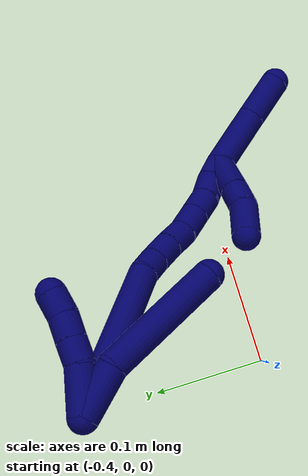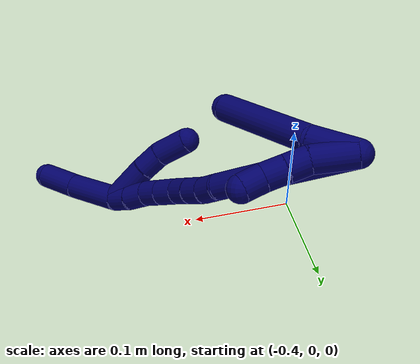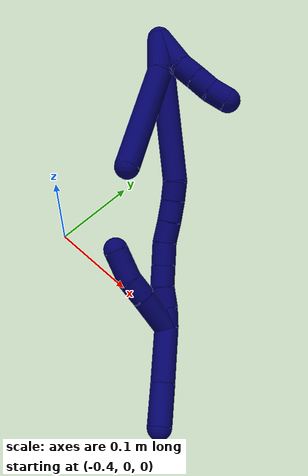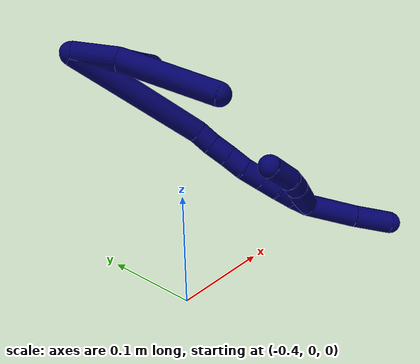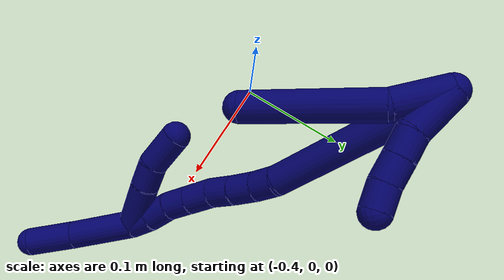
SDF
<sdf version="1.7">
 <world name="default">
  <model name="7">
   <static>0</static>
   <link name="7">
    <collision name="collision-cylinder-e_1_2_8">
     <pose>-0.005512 -0.003362 -0.020942 2.98242 -0.254233 -2.02576</pose>
     <geometry><cylinder><radius>0.0125</radius><length>0.043829</length></cylinder></geometry>
     <surface>
      <friction><ode><mu>1.16</mu><mu2>1.16</mu2><slip1>0</slip1><slip2>0</slip2></ode></friction>
      <contact><ode><kp>1e+06</kp><kd>1</kd><max_vel>0</max_vel><min_depth>0.001</min_depth></ode></contact>
     </surface>
    </collision>
    <visual name="visual-cylinder-e_1_2_8">
     <pose>-0.005512 -0.003362 -0.020942 2.98242 -0.254233 -2.02576</pose>
     <geometry><cylinder><radius>0.0125</radius><length>0.043829</length></cylinder></geometry>
     <material><ambient>0.003922 0 0.403922 1</ambient></material>
    </visual>
    <collision name="collision-cylinder-e_2_8_6">
     <pose>-0.020252 0.002586 -0.093325 -2.96256 -0.174743 1.5464</pose>
     <geometry><cylinder><radius>0.0125</radius><length>0.106171</length></cylinder></geometry>
     <surface>
      <friction><ode><mu>1.16</mu><mu2>1.16</mu2><slip1>0</slip1><slip2>0</slip2></ode></friction>
      <contact><ode><kp>1e+06</kp><kd>1</kd><max_vel>0</max_vel><min_depth>0.001</min_depth></ode></contact>
     </surface>
    </collision>
    <visual name="visual-cylinder-e_2_8_6">
     <pose>-0.020252 0.002586 -0.093325 -2.96256 -0.174743 1.5464</pose>
     <geometry><cylinder><radius>0.0125</radius><length>0.106171</length></cylinder></geometry>
     <material><ambient>0.003922 0 0.403922 1</ambient></material>
    </visual>
    <collision name="collision-cylinder-e_1_2_9">
     <pose>0.000297 -0.012421 -0.015476 2.46526 0.014967 0.042554</pose>
     <geometry><cylinder><radius>0.0125</radius><length>0.039693</length></cylinder></geometry>
     <surface>
      <friction><ode><mu>1.16</mu><mu2>1.16</mu2><slip1>0</slip1><slip2>0</slip2></ode></friction>
      <contact><ode><kp>1e+06</kp><kd>1</kd><max_vel>0</max_vel><min_depth>0.001</min_depth></ode></contact>
     </surface>
    </collision>
    <visual name="visual-cylinder-e_1_2_9">
     <pose>0.000297 -0.012421 -0.015476 2.46526 0.014967 0.042554</pose>
     <geometry><cylinder><radius>0.0125</radius><length>0.039693</length></cylinder></geometry>
     <material><ambient>0.003922 0 0.403922 1</ambient></material>
    </visual>
    <collision name="collision-cylinder-e_2_9_10">
     <pose>0.002792 -0.032482 -0.037087 2.24742 0.220705 0.45422</pose>
     <geometry><cylinder><radius>0.0125</radius><length>0.020083</length></cylinder></geometry>
     <surface>
      <friction><ode><mu>1.16</mu><mu2>1.16</mu2><slip1>0</slip1><slip2>0</slip2></ode></friction>
      <contact><ode><kp>1e+06</kp><kd>1</kd><max_vel>0</max_vel><min_depth>0.001</min_depth></ode></contact>
     </surface>
    </collision>
    <visual name="visual-cylinder-e_2_9_10">
     <pose>0.002792 -0.032482 -0.037087 2.24742 0.220705 0.45422</pose>
     <geometry><cylinder><radius>0.0125</radius><length>0.020083</length></cylinder></geometry>
     <material><ambient>0.003922 0 0.403922 1</ambient></material>
    </visual>
    <collision name="collision-cylinder-e_3_10_11">
     <pose>0.007184 -0.047584 -0.049578 2.27625 0.220163 0.469788</pose>
     <geometry><cylinder><radius>0.0125</radius><length>0.02009</length></cylinder></geometry>
     <surface>
      <friction><ode><mu>1.16</mu><mu2>1.16</mu2><slip1>0</slip1><slip2>0</slip2></ode></friction>
      <contact><ode><kp>1e+06</kp><kd>1</kd><max_vel>0</max_vel><min_depth>0.001</min_depth></ode></contact>
     </surface>
    </collision>
    <visual name="visual-cylinder-e_3_10_11">
     <pose>0.007184 -0.047584 -0.049578 2.27625 0.220163 0.469788</pose>
     <geometry><cylinder><radius>0.0125</radius><length>0.02009</length></cylinder></geometry>
     <material><ambient>0.003922 0 0.403922 1</ambient></material>
    </visual>
    <collision name="collision-cylinder-e_4_11_5">
     <pose>0.011909 -0.06347 -0.060831 2.09744 0.254103 0.436974</pose>
     <geometry><cylinder><radius>0.0125</radius><length>0.020135</length></cylinder></geometry>
     <surface>
      <friction><ode><mu>1.16</mu><mu2>1.16</mu2><slip1>0</slip1><slip2>0</slip2></ode></friction>
      <contact><ode><kp>1e+06</kp><kd>1</kd><max_vel>0</max_vel><min_depth>0.001</min_depth></ode></contact>
     </surface>
    </collision>
    <visual name="visual-cylinder-e_4_11_5">
     <pose>0.011909 -0.06347 -0.060831 2.09744 0.254103 0.436974</pose>
     <geometry><cylinder><radius>0.0125</radius><length>0.020135</length></cylinder></geometry>
     <material><ambient>0.003922 0 0.403922 1</ambient></material>
    </visual>
    <collision name="collision-cylinder-e_1_2_12">
     <pose>0.018458 -0.007539 -0.070652 3.03528 0.254157 2.35243</pose>
     <geometry><cylinder><radius>0.0125</radius><length>0.146822</length></cylinder></geometry>
     <surface>
      <friction><ode><mu>1.16</mu><mu2>1.16</mu2><slip1>0</slip1><slip2>0</slip2></ode></friction>
      <contact><ode><kp>1e+06</kp><kd>1</kd><max_vel>0</max_vel><min_depth>0.001</min_depth></ode></contact>
     </surface>
    </collision>
    <visual name="visual-cylinder-e_1_2_12">
     <pose>0.018458 -0.007539 -0.070652 3.03528 0.254157 2.35243</pose>
     <geometry><cylinder><radius>0.0125</radius><length>0.146822</length></cylinder></geometry>
     <material><ambient>0.003922 0 0.403922 1</ambient></material>
    </visual>
    <collision name="collision-cylinder-e_2_12_13">
     <pose>0.039854 -0.013623 -0.150889 -2.9909 0.294255 -2.19937</pose>
     <geometry><cylinder><radius>0.0125</radius><length>0.020263</length></cylinder></geometry>
     <surface>
      <friction><ode><mu>1.16</mu><mu2>1.16</mu2><slip1>0</slip1><slip2>0</slip2></ode></friction>
      <contact><ode><kp>1e+06</kp><kd>1</kd><max_vel>0</max_vel><min_depth>0.001</min_depth></ode></contact>
     </surface>
    </collision>
    <visual name="visual-cylinder-e_2_12_13">
     <pose>0.039854 -0.013623 -0.150889 -2.9909 0.294255 -2.19937</pose>
     <geometry><cylinder><radius>0.0125</radius><length>0.020263</length></cylinder></geometry>
     <material><ambient>0.003922 0 0.403922 1</ambient></material>
    </visual>
    <collision name="collision-cylinder-e_3_13_14">
     <pose>0.044697 -0.010329 -0.171243 -2.97251 0.172664 -1.59185</pose>
     <geometry><cylinder><radius>0.0125</radius><length>0.022177</length></cylinder></geometry>
     <surface>
      <friction><ode><mu>1.16</mu><mu2>1.16</mu2><slip1>0</slip1><slip2>0</slip2></ode></friction>
      <contact><ode><kp>1e+06</kp><kd>1</kd><max_vel>0</max_vel><min_depth>0.001</min_depth></ode></contact>
     </surface>
    </collision>
    <visual name="visual-cylinder-e_3_13_14">
     <pose>0.044697 -0.010329 -0.171243 -2.97251 0.172664 -1.59185</pose>
     <geometry><cylinder><radius>0.0125</radius><length>0.022177</length></cylinder></geometry>
     <material><ambient>0.003922 0 0.403922 1</ambient></material>
    </visual>
    <collision name="collision-cylinder-e_4_14_15">
     <pose>0.048587 -0.006029 -0.192593 -2.91296 0.180652 -1.33578</pose>
     <geometry><cylinder><radius>0.0125</radius><length>0.02209</length></cylinder></geometry>
     <surface>
      <friction><ode><mu>1.16</mu><mu2>1.16</mu2><slip1>0</slip1><slip2>0</slip2></ode></friction>
      <contact><ode><kp>1e+06</kp><kd>1</kd><max_vel>0</max_vel><min_depth>0.001</min_depth></ode></contact>
     </surface>
    </collision>
    <visual name="visual-cylinder-e_4_14_15">
     <pose>0.048587 -0.006029 -0.192593 -2.91296 0.180652 -1.33578</pose>
     <geometry><cylinder><radius>0.0125</radius><length>0.02209</length></cylinder></geometry>
     <material><ambient>0.003922 0 0.403922 1</ambient></material>
    </visual>
    <collision name="collision-cylinder-e_5_15_16">
     <pose>0.052458 -0.003201 -0.214859 -3.11037 0.160072 -2.75706</pose>
     <geometry><cylinder><radius>0.0125</radius><length>0.023682</length></cylinder></geometry>
     <surface>
      <friction><ode><mu>1.16</mu><mu2>1.16</mu2><slip1>0</slip1><slip2>0</slip2></ode></friction>
      <contact><ode><kp>1e+06</kp><kd>1</kd><max_vel>0</max_vel><min_depth>0.001</min_depth></ode></contact>
     </surface>
    </collision>
    <visual name="visual-cylinder-e_5_15_16">
     <pose>0.052458 -0.003201 -0.214859 -3.11037 0.160072 -2.75706</pose>
     <geometry><cylinder><radius>0.0125</radius><length>0.023682</length></cylinder></geometry>
     <material><ambient>0.003922 0 0.403922 1</ambient></material>
    </visual>
    <collision name="collision-cylinder-e_6_16_17">
     <pose>0.056045 -0.002468 -0.237352 -3.10755 0.155819 -2.71226</pose>
     <geometry><cylinder><radius>0.0125</radius><length>0.021895</length></cylinder></geometry>
     <surface>
      <friction><ode><mu>1.16</mu><mu2>1.16</mu2><slip1>0</slip1><slip2>0</slip2></ode></friction>
      <contact><ode><kp>1e+06</kp><kd>1</kd><max_vel>0</max_vel><min_depth>0.001</min_depth></ode></contact>
     </surface>
    </collision>
    <visual name="visual-cylinder-e_6_16_17">
     <pose>0.056045 -0.002468 -0.237352 -3.10755 0.155819 -2.71226</pose>
     <geometry><cylinder><radius>0.0125</radius><length>0.021895</length></cylinder></geometry>
     <material><ambient>0.003922 0 0.403922 1</ambient></material>
    </visual>
    <collision name="collision-cylinder-e_7_17_18">
     <pose>0.060524 -0.0038 -0.258894 2.98453 0.250456 2.02425</pose>
     <geometry><cylinder><radius>0.0125</radius><length>0.022434</length></cylinder></geometry>
     <surface>
      <friction><ode><mu>1.16</mu><mu2>1.16</mu2><slip1>0</slip1><slip2>0</slip2></ode></friction>
      <contact><ode><kp>1e+06</kp><kd>1</kd><max_vel>0</max_vel><min_depth>0.001</min_depth></ode></contact>
     </surface>
    </collision>
    <visual name="visual-cylinder-e_7_17_18">
     <pose>0.060524 -0.0038 -0.258894 2.98453 0.250456 2.02425</pose>
     <geometry><cylinder><radius>0.0125</radius><length>0.022434</length></cylinder></geometry>
     <material><ambient>0.003922 0 0.403922 1</ambient></material>
    </visual>
    <collision name="collision-cylinder-e_8_18_1">
     <pose>0.064615 -0.006189 -0.279839 3.07413 0.127417 2.16851</pose>
     <geometry><cylinder><radius>0.0125</radius><length>0.020637</length></cylinder></geometry>
     <surface>
      <friction><ode><mu>1.16</mu><mu2>1.16</mu2><slip1>0</slip1><slip2>0</slip2></ode></friction>
      <contact><ode><kp>1e+06</kp><kd>1</kd><max_vel>0</max_vel><min_depth>0.001</min_depth></ode></contact>
     </surface>
    </collision>
    <visual name="visual-cylinder-e_8_18_1">
     <pose>0.064615 -0.006189 -0.279839 3.07413 0.127417 2.16851</pose>
     <geometry><cylinder><radius>0.0125</radius><length>0.020637</length></cylinder></geometry>
     <material><ambient>0.003922 0 0.403922 1</ambient></material>
    </visual>
    <collision name="collision-cylinder-e_1_1_19">
     <pose>0.061683 -0.008368 -0.318428 3.08919 -0.148219 -2.46291</pose>
     <geometry><cylinder><radius>0.0125</radius><length>0.057463</length></cylinder></geometry>
     <surface>
      <friction><ode><mu>1.16</mu><mu2>1.16</mu2><slip1>0</slip1><slip2>0</slip2></ode></friction>
      <contact><ode><kp>1e+06</kp><kd>1</kd><max_vel>0</max_vel><min_depth>0.001</min_depth></ode></contact>
     </surface>
    </collision>
    <visual name="visual-cylinder-e_1_1_19">
     <pose>0.061683 -0.008368 -0.318428 3.08919 -0.148219 -2.46291</pose>
     <geometry><cylinder><radius>0.0125</radius><length>0.057463</length></cylinder></geometry>
     <material><ambient>0.003922 0 0.403922 1</ambient></material>
    </visual>
    <collision name="collision-cylinder-e_2_19_4">
     <pose>0.053033 -0.011137 -0.367573 3.08002 -0.208726 -2.56965</pose>
     <geometry><cylinder><radius>0.0125</radius><length>0.042537</length></cylinder></geometry>
     <surface>
      <friction><ode><mu>1.16</mu><mu2>1.16</mu2><slip1>0</slip1><slip2>0</slip2></ode></friction>
      <contact><ode><kp>1e+06</kp><kd>1</kd><max_vel>0</max_vel><min_depth>0.001</min_depth></ode></contact>
     </surface>
    </collision>
    <visual name="visual-cylinder-e_2_19_4">
     <pose>0.053033 -0.011137 -0.367573 3.08002 -0.208726 -2.56965</pose>
     <geometry><cylinder><radius>0.0125</radius><length>0.042537</length></cylinder></geometry>
     <material><ambient>0.003922 0 0.403922 1</ambient></material>
    </visual>
    <collision name="collision-cylinder-e_1_1_20">
     <pose>0.051526 0.00196 -0.275858 -0.557021 -0.710981 0.211527</pose>
     <geometry><cylinder><radius>0.0125</radius><length>0.044132</length></cylinder></geometry>
     <surface>
      <friction><ode><mu>1.16</mu><mu2>1.16</mu2><slip1>0</slip1><slip2>0</slip2></ode></friction>
      <contact><ode><kp>1e+06</kp><kd>1</kd><max_vel>0</max_vel><min_depth>0.001</min_depth></ode></contact>
     </surface>
    </collision>
    <visual name="visual-cylinder-e_1_1_20">
     <pose>0.051526 0.00196 -0.275858 -0.557021 -0.710981 0.211527</pose>
     <geometry><cylinder><radius>0.0125</radius><length>0.044132</length></cylinder></geometry>
     <material><ambient>0.003922 0 0.403922 1</ambient></material>
    </visual>
    <collision name="collision-cylinder-e_2_20_21">
     <pose>0.030376 0.016181 -0.254155 -0.621754 -0.630981 0.208972</pose>
     <geometry><cylinder><radius>0.0125</radius><length>0.022886</length></cylinder></geometry>
     <surface>
      <friction><ode><mu>1.16</mu><mu2>1.16</mu2><slip1>0</slip1><slip2>0</slip2></ode></friction>
      <contact><ode><kp>1e+06</kp><kd>1</kd><max_vel>0</max_vel><min_depth>0.001</min_depth></ode></contact>
     </surface>
    </collision>
    <visual name="visual-cylinder-e_2_20_21">
     <pose>0.030376 0.016181 -0.254155 -0.621754 -0.630981 0.208972</pose>
     <geometry><cylinder><radius>0.0125</radius><length>0.022886</length></cylinder></geometry>
     <material><ambient>0.003922 0 0.403922 1</ambient></material>
    </visual>
    <collision name="collision-cylinder-e_3_21_3">
     <pose>0.017221 0.027608 -0.232703 -0.409163 -0.398842 0.083819</pose>
     <geometry><cylinder><radius>0.0125</radius><length>0.032981</length></cylinder></geometry>
     <surface>
      <friction><ode><mu>1.16</mu><mu2>1.16</mu2><slip1>0</slip1><slip2>0</slip2></ode></friction>
      <contact><ode><kp>1e+06</kp><kd>1</kd><max_vel>0</max_vel><min_depth>0.001</min_depth></ode></contact>
     </surface>
    </collision>
    <visual name="visual-cylinder-e_3_21_3">
     <pose>0.017221 0.027608 -0.232703 -0.409163 -0.398842 0.083819</pose>
     <geometry><cylinder><radius>0.0125</radius><length>0.032981</length></cylinder></geometry>
     <material><ambient>0.003922 0 0.403922 1</ambient></material>
    </visual>
    <collision name="collision-sphere-3">
     <pose>0.010817 0.033654 -0.218761 0 -0 0</pose>
     <geometry><sphere><radius>0.0125</radius></sphere></geometry>
     <surface>
      <friction><ode><mu>1.16</mu><mu2>1.16</mu2><slip1>0</slip1><slip2>0</slip2></ode></friction>
      <contact><ode><kp>1e+06</kp><kd>1</kd><max_vel>0</max_vel><min_depth>0.001</min_depth></ode></contact>
     </surface>
    </collision>
    <visual name="visual-sphere-3">
     <pose>0.010817 0.033654 -0.218761 0 -0 0</pose>
     <geometry><sphere><radius>0.0125</radius></sphere></geometry>
     <material><ambient>0.003922 0 0.403922 1</ambient></material>
    </visual>
    <collision name="collision-sphere-21">
     <pose>0.023625 0.021563 -0.246645 0 -0 0</pose>
     <geometry><sphere><radius>0.0125</radius></sphere></geometry>
     <surface>
      <friction><ode><mu>1.16</mu><mu2>1.16</mu2><slip1>0</slip1><slip2>0</slip2></ode></friction>
      <contact><ode><kp>1e+06</kp><kd>1</kd><max_vel>0</max_vel><min_depth>0.001</min_depth></ode></contact>
     </surface>
    </collision>
    <visual name="visual-sphere-21">
     <pose>0.023625 0.021563 -0.246645 0 -0 0</pose>
     <geometry><sphere><radius>0.0125</radius></sphere></geometry>
     <material><ambient>0.003922 0 0.403922 1</ambient></material>
    </visual>
    <collision name="collision-sphere-20">
     <pose>0.037127 0.010799 -0.261666 0 -0 0</pose>
     <geometry><sphere><radius>0.0125</radius></sphere></geometry>
     <surface>
      <friction><ode><mu>1.16</mu><mu2>1.16</mu2><slip1>0</slip1><slip2>0</slip2></ode></friction>
      <contact><ode><kp>1e+06</kp><kd>1</kd><max_vel>0</max_vel><min_depth>0.001</min_depth></ode></contact>
     </surface>
    </collision>
    <visual name="visual-sphere-20">
     <pose>0.037127 0.010799 -0.261666 0 -0 0</pose>
     <geometry><sphere><radius>0.0125</radius></sphere></geometry>
     <material><ambient>0.003922 0 0.403922 1</ambient></material>
    </visual>
    <collision name="collision-sphere-4">
     <pose>0.048626 -0.012417 -0.388341 0 -0 0</pose>
     <geometry><sphere><radius>0.0125</radius></sphere></geometry>
     <surface>
      <friction><ode><mu>1.16</mu><mu2>1.16</mu2><slip1>0</slip1><slip2>0</slip2></ode></friction>
      <contact><ode><kp>1e+06</kp><kd>1</kd><max_vel>0</max_vel><min_depth>0.001</min_depth></ode></contact>
     </surface>
    </collision>
    <visual name="visual-sphere-4">
     <pose>0.048626 -0.012417 -0.388341 0 -0 0</pose>
     <geometry><sphere><radius>0.0125</radius></sphere></geometry>
     <material><ambient>0.003922 0 0.403922 1</ambient></material>
    </visual>
    <collision name="collision-sphere-11">
     <pose>0.009378 -0.055046 -0.055933 0 -0 0</pose>
     <geometry><sphere><radius>0.0125</radius></sphere></geometry>
     <surface>
      <friction><ode><mu>1.16</mu><mu2>1.16</mu2><slip1>0</slip1><slip2>0</slip2></ode></friction>
      <contact><ode><kp>1e+06</kp><kd>1</kd><max_vel>0</max_vel><min_depth>0.001</min_depth></ode></contact>
     </surface>
    </collision>
    <visual name="visual-sphere-11">
     <pose>0.009378 -0.055046 -0.055933 0 -0 0</pose>
     <geometry><sphere><radius>0.0125</radius></sphere></geometry>
     <material><ambient>0.003922 0 0.403922 1</ambient></material>
    </visual>
    <collision name="collision-sphere-10">
     <pose>0.004991 -0.040121 -0.043222 0 -0 0</pose>
     <geometry><sphere><radius>0.0125</radius></sphere></geometry>
     <surface>
      <friction><ode><mu>1.16</mu><mu2>1.16</mu2><slip1>0</slip1><slip2>0</slip2></ode></friction>
      <contact><ode><kp>1e+06</kp><kd>1</kd><max_vel>0</max_vel><min_depth>0.001</min_depth></ode></contact>
     </surface>
    </collision>
    <visual name="visual-sphere-10">
     <pose>0.004991 -0.040121 -0.043222 0 -0 0</pose>
     <geometry><sphere><radius>0.0125</radius></sphere></geometry>
     <material><ambient>0.003922 0 0.403922 1</ambient></material>
    </visual>
    <collision name="collision-sphere-6">
     <pose>-0.029481 0.011895 -0.144767 0 -0 0</pose>
     <geometry><sphere><radius>0.0125</radius></sphere></geometry>
     <surface>
      <friction><ode><mu>1.16</mu><mu2>1.16</mu2><slip1>0</slip1><slip2>0</slip2></ode></friction>
      <contact><ode><kp>1e+06</kp><kd>1</kd><max_vel>0</max_vel><min_depth>0.001</min_depth></ode></contact>
     </surface>
    </collision>
    <visual name="visual-sphere-6">
     <pose>-0.029481 0.011895 -0.144767 0 -0 0</pose>
     <geometry><sphere><radius>0.0125</radius></sphere></geometry>
     <material><ambient>0.003922 0 0.403922 1</ambient></material>
    </visual>
    <collision name="collision-sphere-9">
     <pose>0.000594 -0.024842 -0.030952 0 -0 0</pose>
     <geometry><sphere><radius>0.0125</radius></sphere></geometry>
     <surface>
      <friction><ode><mu>1.16</mu><mu2>1.16</mu2><slip1>0</slip1><slip2>0</slip2></ode></friction>
      <contact><ode><kp>1e+06</kp><kd>1</kd><max_vel>0</max_vel><min_depth>0.001</min_depth></ode></contact>
     </surface>
    </collision>
    <visual name="visual-sphere-9">
     <pose>0.000594 -0.024842 -0.030952 0 -0 0</pose>
     <geometry><sphere><radius>0.0125</radius></sphere></geometry>
     <material><ambient>0.003922 0 0.403922 1</ambient></material>
    </visual>
    <collision name="collision-sphere-2">
     <geometry><sphere><radius>0.0125</radius></sphere></geometry>
     <surface>
      <friction><ode><mu>1.16</mu><mu2>1.16</mu2><slip1>0</slip1><slip2>0</slip2></ode></friction>
      <contact><ode><kp>1e+06</kp><kd>1</kd><max_vel>0</max_vel><min_depth>0.001</min_depth></ode></contact>
     </surface>
    </collision>
    <visual name="visual-sphere-2">
     <geometry><sphere><radius>0.0125</radius></sphere></geometry>
     <material><ambient>0.003922 0 0.403922 1</ambient></material>
    </visual>
    <collision name="collision-sphere-19">
     <pose>0.05744 -0.009856 -0.346805 0 -0 0</pose>
     <geometry><sphere><radius>0.0125</radius></sphere></geometry>
     <surface>
      <friction><ode><mu>1.16</mu><mu2>1.16</mu2><slip1>0</slip1><slip2>0</slip2></ode></friction>
      <contact><ode><kp>1e+06</kp><kd>1</kd><max_vel>0</max_vel><min_depth>0.001</min_depth></ode></contact>
     </surface>
    </collision>
    <visual name="visual-sphere-19">
     <pose>0.05744 -0.009856 -0.346805 0 -0 0</pose>
     <geometry><sphere><radius>0.0125</radius></sphere></geometry>
     <material><ambient>0.003922 0 0.403922 1</ambient></material>
    </visual>
    <collision name="collision-sphere-8">
     <pose>-0.011023 -0.006724 -0.041884 0 -0 0</pose>
     <geometry><sphere><radius>0.0125</radius></sphere></geometry>
     <surface>
      <friction><ode><mu>1.16</mu><mu2>1.16</mu2><slip1>0</slip1><slip2>0</slip2></ode></friction>
      <contact><ode><kp>1e+06</kp><kd>1</kd><max_vel>0</max_vel><min_depth>0.001</min_depth></ode></contact>
     </surface>
    </collision>
    <visual name="visual-sphere-8">
     <pose>-0.011023 -0.006724 -0.041884 0 -0 0</pose>
     <geometry><sphere><radius>0.0125</radius></sphere></geometry>
     <material><ambient>0.003922 0 0.403922 1</ambient></material>
    </visual>
    <collision name="collision-sphere-5">
     <pose>0.014439 -0.071894 -0.065729 0 -0 0</pose>
     <geometry><sphere><radius>0.0125</radius></sphere></geometry>
     <surface>
      <friction><ode><mu>1.16</mu><mu2>1.16</mu2><slip1>0</slip1><slip2>0</slip2></ode></friction>
      <contact><ode><kp>1e+06</kp><kd>1</kd><max_vel>0</max_vel><min_depth>0.001</min_depth></ode></contact>
     </surface>
    </collision>
    <visual name="visual-sphere-5">
     <pose>0.014439 -0.071894 -0.065729 0 -0 0</pose>
     <geometry><sphere><radius>0.0125</radius></sphere></geometry>
     <material><ambient>0.003922 0 0.403922 1</ambient></material>
    </visual>
    <collision name="collision-sphere-12">
     <pose>0.036915 -0.015079 -0.141303 0 -0 0</pose>
     <geometry><sphere><radius>0.0125</radius></sphere></geometry>
     <surface>
      <friction><ode><mu>1.16</mu><mu2>1.16</mu2><slip1>0</slip1><slip2>0</slip2></ode></friction>
      <contact><ode><kp>1e+06</kp><kd>1</kd><max_vel>0</max_vel><min_depth>0.001</min_depth></ode></contact>
     </surface>
    </collision>
    <visual name="visual-sphere-12">
     <pose>0.036915 -0.015079 -0.141303 0 -0 0</pose>
     <geometry><sphere><radius>0.0125</radius></sphere></geometry>
     <material><ambient>0.003922 0 0.403922 1</ambient></material>
    </visual>
    <collision name="collision-sphere-13">
     <pose>0.042792 -0.012168 -0.160475 0 -0 0</pose>
     <geometry><sphere><radius>0.0125</radius></sphere></geometry>
     <surface>
      <friction><ode><mu>1.16</mu><mu2>1.16</mu2><slip1>0</slip1><slip2>0</slip2></ode></friction>
      <contact><ode><kp>1e+06</kp><kd>1</kd><max_vel>0</max_vel><min_depth>0.001</min_depth></ode></contact>
     </surface>
    </collision>
    <visual name="visual-sphere-13">
     <pose>0.042792 -0.012168 -0.160475 0 -0 0</pose>
     <geometry><sphere><radius>0.0125</radius></sphere></geometry>
     <material><ambient>0.003922 0 0.403922 1</ambient></material>
    </visual>
    <collision name="collision-sphere-14">
     <pose>0.046602 -0.008491 -0.182011 0 -0 0</pose>
     <geometry><sphere><radius>0.0125</radius></sphere></geometry>
     <surface>
      <friction><ode><mu>1.16</mu><mu2>1.16</mu2><slip1>0</slip1><slip2>0</slip2></ode></friction>
      <contact><ode><kp>1e+06</kp><kd>1</kd><max_vel>0</max_vel><min_depth>0.001</min_depth></ode></contact>
     </surface>
    </collision>
    <visual name="visual-sphere-14">
     <pose>0.046602 -0.008491 -0.182011 0 -0 0</pose>
     <geometry><sphere><radius>0.0125</radius></sphere></geometry>
     <material><ambient>0.003922 0 0.403922 1</ambient></material>
    </visual>
    <collision name="collision-sphere-15">
     <pose>0.050571 -0.003566 -0.203176 0 -0 0</pose>
     <geometry><sphere><radius>0.0125</radius></sphere></geometry>
     <surface>
      <friction><ode><mu>1.16</mu><mu2>1.16</mu2><slip1>0</slip1><slip2>0</slip2></ode></friction>
      <contact><ode><kp>1e+06</kp><kd>1</kd><max_vel>0</max_vel><min_depth>0.001</min_depth></ode></contact>
     </surface>
    </collision>
    <visual name="visual-sphere-15">
     <pose>0.050571 -0.003566 -0.203176 0 -0 0</pose>
     <geometry><sphere><radius>0.0125</radius></sphere></geometry>
     <material><ambient>0.003922 0 0.403922 1</ambient></material>
    </visual>
    <collision name="collision-sphere-16">
     <pose>0.054346 -0.002836 -0.226543 0 -0 0</pose>
     <geometry><sphere><radius>0.0125</radius></sphere></geometry>
     <surface>
      <friction><ode><mu>1.16</mu><mu2>1.16</mu2><slip1>0</slip1><slip2>0</slip2></ode></friction>
      <contact><ode><kp>1e+06</kp><kd>1</kd><max_vel>0</max_vel><min_depth>0.001</min_depth></ode></contact>
     </surface>
    </collision>
    <visual name="visual-sphere-16">
     <pose>0.054346 -0.002836 -0.226543 0 -0 0</pose>
     <geometry><sphere><radius>0.0125</radius></sphere></geometry>
     <material><ambient>0.003922 0 0.403922 1</ambient></material>
    </visual>
    <collision name="collision-sphere-17">
     <pose>0.057744 -0.0021 -0.248161 0 -0 0</pose>
     <geometry><sphere><radius>0.0125</radius></sphere></geometry>
     <surface>
      <friction><ode><mu>1.16</mu><mu2>1.16</mu2><slip1>0</slip1><slip2>0</slip2></ode></friction>
      <contact><ode><kp>1e+06</kp><kd>1</kd><max_vel>0</max_vel><min_depth>0.001</min_depth></ode></contact>
     </surface>
    </collision>
    <visual name="visual-sphere-17">
     <pose>0.057744 -0.0021 -0.248161 0 -0 0</pose>
     <geometry><sphere><radius>0.0125</radius></sphere></geometry>
     <material><ambient>0.003922 0 0.403922 1</ambient></material>
    </visual>
    <collision name="collision-sphere-18">
     <pose>0.063304 -0.0055 -0.269628 0 -0 0</pose>
     <geometry><sphere><radius>0.0125</radius></sphere></geometry>
     <surface>
      <friction><ode><mu>1.16</mu><mu2>1.16</mu2><slip1>0</slip1><slip2>0</slip2></ode></friction>
      <contact><ode><kp>1e+06</kp><kd>1</kd><max_vel>0</max_vel><min_depth>0.001</min_depth></ode></contact>
     </surface>
    </collision>
    <visual name="visual-sphere-18">
     <pose>0.063304 -0.0055 -0.269628 0 -0 0</pose>
     <geometry><sphere><radius>0.0125</radius></sphere></geometry>
     <material><ambient>0.003922 0 0.403922 1</ambient></material>
    </visual>
    <collision name="collision-sphere-1">
     <pose>0.065926 -0.006879 -0.290051 0 -0 0</pose>
     <geometry><sphere><radius>0.0125</radius></sphere></geometry>
     <surface>
      <friction><ode><mu>1.16</mu><mu2>1.16</mu2><slip1>0</slip1><slip2>0</slip2></ode></friction>
      <contact><ode><kp>1e+06</kp><kd>1</kd><max_vel>0</max_vel><min_depth>0.001</min_depth></ode></contact>
     </surface>
    </collision>
    <visual name="visual-sphere-1">
     <pose>0.065926 -0.006879 -0.290051 0 -0 0</pose>
     <geometry><sphere><radius>0.0125</radius></sphere></geometry>
     <material><ambient>0.003922 0 0.403922 1</ambient></material>
    </visual>
    <inertial>
     <pose>0.024187 -0.00657 -0.156475 0 -0 0</pose>
     <mass>0.75</mass>
     <inertia>
      <ixx>7.5e-05</ixx>
      <ixy>0</ixy>
      <ixz>0</ixz>
      <iyy>0.000495</iyy>
      <iyz>0</iyz>
      <izz>-6.6e-05</izz>
     </inertia>
    </inertial>
   </link>
   <pose>-0.393083 0.151843 0.209224 -0.602902 1.05349 1.59385</pose>
  </model>
 </world>
</sdf>
